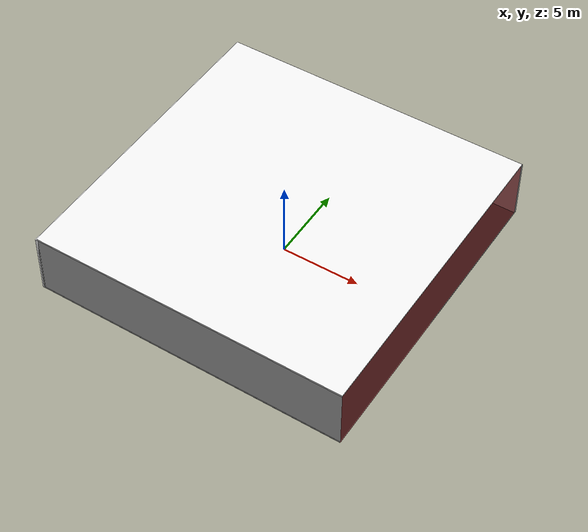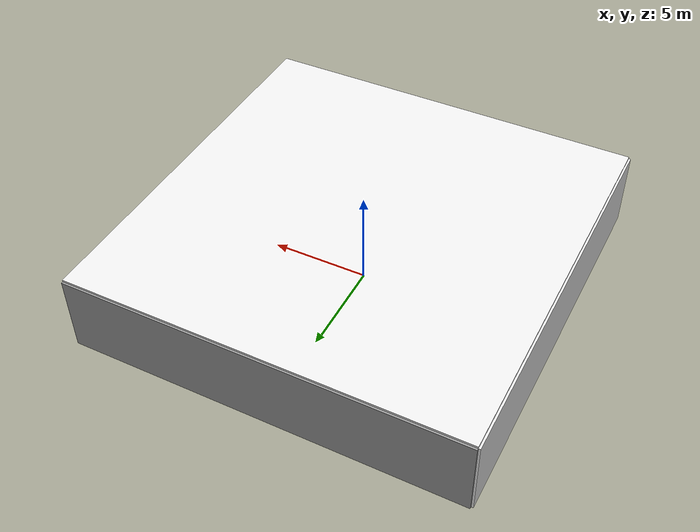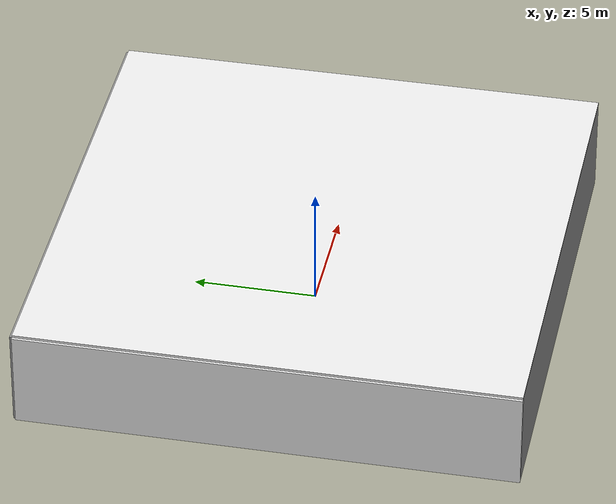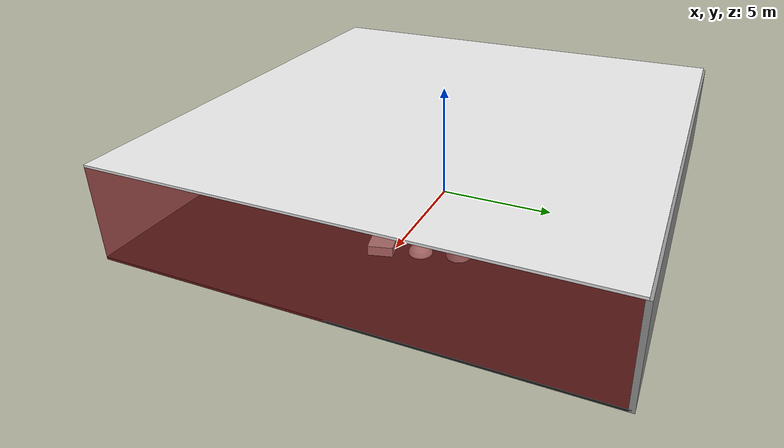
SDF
<sdf version="1.4">
 <world name="default">
  <physics type="ode">
   <max_step_size>0.001</max_step_size>
   <real_time_factor>1</real_time_factor>
   <real_time_update_rate>1000</real_time_update_rate>
   <gravity>0 0 -9.8</gravity>
  </physics>
  <scene><ambient>0.4 0.4 0.4 1</ambient><background>0.7 0.7 0.7 1</background><shadows>1</shadows></scene>
  <model name="Surrounding">
   <static>1</static>
   <link name="Ceiling">
    <collision name="Ceiling_Collision"><geometry><box><size>20 20 0.1</size></box></geometry></collision>
    <visual name="Ceiling_Visual">
     <geometry><box><size>20 20 0.1</size></box></geometry>
     <material>
      <script><uri>file://media/materials/scripts/gazebo.material</uri><name>Gazebo/White</name></script>
     </material>
    </visual>
    <pose>0 0 4.05 0 0 0</pose>
   </link>
   <link name="Wall_South">
    <collision name="Wall_South_Collision">
     <geometry><box><size>20 0 4</size></box></geometry>
     <pose>0 0 2 0 -0 0</pose>
    </collision>
    <visual name="Wall_South_Visual">
     <pose>0 0 2 0 -0 0</pose>
     <geometry><box><size>20 0 4</size></box></geometry>
     <material>
      <script><uri>file://media/materials/scripts/gazebo.material</uri><name>Gazebo/GreyGradientSky</name></script>
     </material>
    </visual>
    <velocity_decay><linear>0</linear><angular>0</angular></velocity_decay>
    <pose>0 -10 0 0 -0 0</pose>
   </link>
   <link name="Wall_East">
    <collision name="Wall_21_Collision">
     <geometry><box><size>20 0 4</size></box></geometry>
     <pose>0 0 2 0 -0 0</pose>
    </collision>
    <visual name="Wall_21_Visual">
     <pose>0 0 2 0 -0 0</pose>
     <geometry><box><size>20 0 4</size></box></geometry>
     <material>
      <script><uri>file://media/materials/scripts/gazebo.material</uri><name>Gazebo/RedTransparent</name></script>
     </material>
    </visual>
    <velocity_decay><linear>0</linear><angular>0</angular></velocity_decay>
    <pose>10 0 0 0 -0 1.5708</pose>
   </link>
   <link name="Wall_North">
    <collision name="Wall_22_Collision">
     <geometry><box><size>20 0.2 4</size></box></geometry>
     <pose>0 0 2 0 -0 0</pose>
    </collision>
    <visual name="Wall_22_Visual">
     <pose>0 0 2 0 -0 0</pose>
     <geometry><box><size>20 0.2 4</size></box></geometry>
     <material>
      <script><uri>file://media/materials/scripts/gazebo.material</uri><name>Gazebo/GreyGradientSky</name></script>
     </material>
    </visual>
    <velocity_decay><linear>0</linear><angular>0</angular></velocity_decay>
    <pose>0 10 0 0 -0 0</pose>
   </link>
   <link name="Wall_West">
    <collision name="Wall_23_Collision">
     <geometry><box><size>20 0.2 4</size></box></geometry>
     <pose>0 0 2 0 -0 0</pose>
    </collision>
    <visual name="Wall_23_Visual">
     <pose>0 0 2 0 -0 0</pose>
     <geometry><box><size>20 0.2 4</size></box></geometry>
     <material>
      <script><uri>file://media/materials/scripts/gazebo.material</uri><name>Gazebo/WhiteGlow</name></script>
     </material>
    </visual>
    <velocity_decay><linear>0</linear><angular>0</angular></velocity_decay>
    <pose>-10 0 0 0 0 -1.5708</pose>
   </link>
   <link name="Ground_link">
    <collision name="collision">
     <pose>0 0 .05 0 -0 0</pose>
     <geometry><box><size>20 20 0.1</size></box></geometry>
    </collision>
    <visual name="visual">
     <pose>0 0 .05 0 -0 0</pose>
     <geometry><box><size>20 20 0.1</size></box></geometry>
     <material>
      <script><uri>file://media/materials/scripts/gazebo.material</uri><name>Gazebo/FlatBlack</name></script>
     </material>
    </visual>
   </link>
   <static>1</static>
  </model>
  <spherical_coordinates>
   <surface_model>EARTH_WGS84</surface_model>
   <latitude_deg>0</latitude_deg>
   <longitude_deg>0</longitude_deg>
   <elevation>0</elevation>
   <heading_deg>0</heading_deg>
  </spherical_coordinates>
  <light name="lightball_0" type="diffuse">
   <diffuse>0.8 0.8 0.8 1</diffuse>
   <specular>0.2 0.2 0.2 1</specular>
   <attenuation>
    <range>100</range>
    <constant>0.7</constant>
    <linear>0.01</linear>
    <quadratic>0.001</quadratic>
   </attenuation>
   <direction>-0.5 0.1 -0.9</direction>
   <pose>3.68537120014 9.17515859794 3.10138647382 0 0 0</pose>
  </light>
  <light name="lightball_1" type="diffuse">
   <diffuse>0.8 0.8 0.8 1</diffuse>
   <specular>0.2 0.2 0.2 1</specular>
   <attenuation>
    <range>100</range>
    <constant>0.7</constant>
    <linear>0.01</linear>
    <quadratic>0.001</quadratic>
   </attenuation>
   <direction>-0.5 0.1 -0.9</direction>
   <pose>1.76297339215 -0.0648610781918 1.90020915038 0 0 0</pose>
  </light>
  <light name="lightball_2" type="diffuse">
   <diffuse>0.8 0.8 0.8 1</diffuse>
   <specular>0.2 0.2 0.2 1</specular>
   <attenuation>
    <range>100</range>
    <constant>0.7</constant>
    <linear>0.01</linear>
    <quadratic>0.001</quadratic>
   </attenuation>
   <direction>-0.5 0.1 -0.9</direction>
   <pose>0.818974234471 9.8140976386 1.69610142519 0 0 0</pose>
  </light>
  <light name="lightball_3" type="diffuse">
   <diffuse>0.8 0.8 0.8 1</diffuse>
   <specular>0.2 0.2 0.2 1</specular>
   <attenuation>
    <range>100</range>
    <constant>0.7</constant>
    <linear>0.01</linear>
    <quadratic>0.001</quadratic>
   </attenuation>
   <direction>-0.5 0.1 -0.9</direction>
   <pose>4.61208072334 -6.03127068545 2.97742820005 0 0 0</pose>
  </light>
  <light name="lightball_4" type="diffuse">
   <diffuse>0.8 0.8 0.8 1</diffuse>
   <specular>0.2 0.2 0.2 1</specular>
   <attenuation>
    <range>100</range>
    <constant>0.7</constant>
    <linear>0.01</linear>
    <quadratic>0.001</quadratic>
   </attenuation>
   <direction>-0.5 0.1 -0.9</direction>
   <pose>2.32308668044 -7.26600188584 3.62821308087 0 0 0</pose>
  </light>
  <light name="lightball_5" type="diffuse">
   <diffuse>0.8 0.8 0.8 1</diffuse>
   <specular>0.2 0.2 0.2 1</specular>
   <attenuation>
    <range>100</range>
    <constant>0.7</constant>
    <linear>0.01</linear>
    <quadratic>0.001</quadratic>
   </attenuation>
   <direction>-0.5 0.1 -0.9</direction>
   <pose>-7.57529367944 -4.31978380288 2.90341727151 0 0 0</pose>
  </light>
  <light name="lightball_6" type="diffuse">
   <diffuse>0.8 0.8 0.8 1</diffuse>
   <specular>0.2 0.2 0.2 1</specular>
   <attenuation>
    <range>100</range>
    <constant>0.7</constant>
    <linear>0.01</linear>
    <quadratic>0.001</quadratic>
   </attenuation>
   <direction>-0.5 0.1 -0.9</direction>
   <pose>-2.07461409618 6.45046312066 3.3363228925 0 0 0</pose>
  </light>
  <light name="lightball_7" type="diffuse">
   <diffuse>0.8 0.8 0.8 1</diffuse>
   <specular>0.2 0.2 0.2 1</specular>
   <attenuation>
    <range>100</range>
    <constant>0.7</constant>
    <linear>0.01</linear>
    <quadratic>0.001</quadratic>
   </attenuation>
   <direction>-0.5 0.1 -0.9</direction>
   <pose>-3.88162375459 0.973410971889 3.38872744047 0 0 0</pose>
  </light>
  <light name="lightball_8" type="diffuse">
   <diffuse>0.8 0.8 0.8 1</diffuse>
   <specular>0.2 0.2 0.2 1</specular>
   <attenuation>
    <range>100</range>
    <constant>0.7</constant>
    <linear>0.01</linear>
    <quadratic>0.001</quadratic>
   </attenuation>
   <direction>-0.5 0.1 -0.9</direction>
   <pose>-7.18682032011 -2.92585713686 3.83760197017 0 0 0</pose>
  </light>
  <light name="lightball_9" type="diffuse">
   <diffuse>0.8 0.8 0.8 1</diffuse>
   <specular>0.2 0.2 0.2 1</specular>
   <attenuation>
    <range>100</range>
    <constant>0.7</constant>
    <linear>0.01</linear>
    <quadratic>0.001</quadratic>
   </attenuation>
   <direction>-0.5 0.1 -0.9</direction>
   <pose>9.30735602961 -1.94034751747 2.06239793865 0 0 0</pose>
  </light>
  <light name="lightball_10" type="diffuse">
   <diffuse>0.8 0.8 0.8 1</diffuse>
   <specular>0.2 0.2 0.2 1</specular>
   <attenuation>
    <range>100</range>
    <constant>0.7</constant>
    <linear>0.01</linear>
    <quadratic>0.001</quadratic>
   </attenuation>
   <direction>-0.5 0.1 -0.9</direction>
   <pose>8.51026179788 -4.27719815733 2.41494735229 0 0 0</pose>
  </light>
  <include><uri>model://cabinet</uri><pose>-7.23929650095 1.46804919313 0 0 0 1.55257752393</pose></include>
  <include><uri>model://cabinet</uri><pose>-1.85378935956 2.04853669767 0 0 0 2.94585523356</pose></include>
  <include>
   <uri>model://robocup_3Dsim_goal</uri>
   <pose>1.65879857623 0.985600406419 0 0 0 1.56600382583</pose>
  </include>
  <include><uri>model://cabinet</uri><pose>4.16163950997 -7.26492539569 0 0 0 2.62204719088</pose></include>
  <include>
   <uri>model://textured_shapes</uri>
   <pose>5.03077909824 1.09689128301 0 0 0 0.241068835523</pose>
  </include>
 </world>
</sdf>

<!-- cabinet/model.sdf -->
<sdf version="1.5">
  <model name="cabinet">
    <static>true</static>
    <link name="cabinet_bottom_plate">
      <inertial>
        <pose>0 0 -1 0 0 0</pose>
        <inertia>
          <ixx>2.050000</ixx>
          <ixy>0</ixy>
          <ixz>0</ixz>
          <iyy>2.050000</iyy>
          <iyz>0</iyz>
          <izz>2.050000</izz>
        </inertia>
        <mass>25.000000</mass>
      </inertial>
      <collision name="cabinet_bottom_plate_geom">
        <pose>0 0 0.010000 0 0 0</pose>
        <geometry>
          <box>
            <size>0.450000 0.450000 0.020000</size>
          </box>
        </geometry>
      </collision>
      <visual name="cabinet_bottom_plate_geom_visual">
        <pose>0 0 0.010000 0 0 0</pose>
        <geometry>
          <box>
            <size>0.450000 0.450000 0.020000</size>
          </box>
        </geometry>
        <material>
          <script>
            <uri>model://media/materials/scripts/gazebo.material</uri>
            <name>Gazebo/Wood</name>
          </script>
        </material>
      </visual>
      <collision name="cabinet_bottom_plate_geom_cabinet_back_plate">
        <pose>0.235000 0 0.510000 0 0 0</pose>
        <geometry>
          <box>
            <size>0.020000 0.450000 1.020000</size>
          </box>
        </geometry>
      </collision>
      <visual name="cabinet_bottom_plate_geom_cabinet_back_plate_visual">
        <pose>0.235000 0 0.510000 0 0 0</pose>
        <geometry>
          <box>
            <size>0.020000 0.450000 1.020000</size>
          </box>
        </geometry>
        <material>
          <script>
            <uri>model://media/materials/scripts/gazebo.material</uri>
            <name>Gazebo/Wood</name>
          </script>
        </material>
      </visual>
      <collision name="cabinet_bottom_plate_geom_cabinet_left_plate">
        <pose>0 0.235000 0.510000 0 0 0</pose>
        <geometry>
          <box>
            <size>0.450000 0.020000 1.020000</size>
          </box>
        </geometry>
      </collision>
      <visual name="cabinet_bottom_plate_geom_cabinet_left_plate_visual">
        <pose>0 0.235000 0.510000 0 0 0</pose>
        <geometry>
          <box>
            <size>0.450000 0.020000 1.020000</size>
          </box>
        </geometry>
        <material>
          <script>
            <uri>model://media/materials/scripts/gazebo.material</uri>
            <name>Gazebo/Wood</name>
          </script>
        </material>
      </visual>
      <collision name="cabinet_bottom_plate_geom_cabinet_middle_plate">
        <pose>0 0 0.510000 0 0 0</pose>
        <geometry>
          <box>
            <size>0.450000 0.450000 0.020000</size>
          </box>
        </geometry>
      </collision>
      <visual name="cabinet_bottom_plate_geom_cabinet_middle_plate_visual">
        <pose>0 0 0.510000 0 0 0</pose>
        <geometry>
          <box>
            <size>0.450000 0.450000 0.020000</size>
          </box>
        </geometry>
        <material>
          <script>
            <uri>model://media/materials/scripts/gazebo.material</uri>
            <name>Gazebo/Wood</name>
          </script>
        </material>
      </visual>
      <collision name="cabinet_bottom_plate_geom_cabinet_right_plate">
        <pose>0 -0.235000 0.510000 0 0 0</pose>
        <geometry>
          <box>
            <size>0.450000 0.020000 1.020000</size>
          </box>
        </geometry>
      </collision>
      <visual name="cabinet_bottom_plate_geom_cabinet_right_plate_visual">
        <pose>0 -0.235000 0.510000 0 0 0</pose>
        <geometry>
          <box>
            <size>0.450000 0.020000 1.020000</size>
          </box>
        </geometry>
        <material>
          <script>
            <uri>model://media/materials/scripts/gazebo.material</uri>
            <name>Gazebo/Wood</name>
          </script>
        </material>
      </visual>
      <collision name="cabinet_bottom_plate_geom_cabinet_top_plate">
        <pose>0 0 1.010000 0 0 0</pose>
        <geometry>
          <box>
            <size>0.450000 0.450000 0.020000</size>
          </box>
        </geometry>
      </collision>
      <visual name="cabinet_bottom_plate_geom_cabinet_top_plate_visual">
        <pose>0 0 1.010000 0 0 0</pose>
        <geometry>
          <box>
            <size>0.450000 0.450000 0.020000</size>
          </box>
        </geometry>
        <material>
          <script>
            <uri>model://media/materials/scripts/gazebo.material</uri>
            <name>Gazebo/Wood</name>
          </script>
        </material>
      </visual>
    </link>
  </model>
</sdf>

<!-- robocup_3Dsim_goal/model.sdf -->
<sdf version="1.5">
  <model name="robocup_3d_goal">
    <static>true</static>
    <link name="left_post">
      <pose>0 1.05 0.45 0 0 0</pose>
      <collision name="collision">
        <geometry>
          <cylinder>
            <radius>0.05</radius>
            <length>0.9</length>
          </cylinder>
        </geometry>
      </collision>
      <visual name="visual">
        <geometry>
          <cylinder>
            <radius>0.05</radius>
            <length>0.9</length>
          </cylinder>
        </geometry>
        <material>
          <script>
            <uri>file://media/materials/scripts/gazebo.material</uri>
            <name>Gazebo/ZincYellow</name>
          </script>
        </material>
      </visual>
    </link>
    <link name="left_support_horiz_lower">
      <pose>0.30 1.05 0.01 0 0 0</pose>
      <collision name="collision">
        <geometry>
          <box>
            <size>0.50 0.02 0.02</size>
          </box>
        </geometry>
      </collision>
      <visual name="visual">
        <geometry>
          <box>
            <size>0.50 0.02 0.02</size>
          </box>
        </geometry>
        <material>
          <script>
            <uri>file://media/materials/scripts/gazebo.material</uri>
            <name>Gazebo/White</name>
          </script>
        </material>
      </visual>
    </link>
    <link name="left_support_horiz_upper">
      <pose>0.30 1.05 0.79 0 0 0</pose>
      <collision name="collision">
        <geometry>
          <box>
            <size>0.50 0.02 0.02</size>
          </box>
        </geometry>
      </collision>
      <visual name="visual">
        <geometry>
          <box>
            <size>0.50 0.02 0.02</size>
          </box>
        </geometry>
        <material>
          <script>
            <uri>file://media/materials/scripts/gazebo.material</uri>
            <name>Gazebo/White</name>
          </script>
        </material>
      </visual>
    </link>
    <link name="left_support_vertical">
      <pose>0.56 1.05 0.4 0 1.5708 0</pose>
      <collision name="collision">
        <geometry>
          <box>
            <size>0.80 0.02 0.02</size>
          </box>
        </geometry>
      </collision>
      <visual name="visual">
        <geometry>
          <box>
            <size>0.80 0.02 0.02</size>
          </box>
        </geometry>
        <material>
          <script>
            <uri>file://media/materials/scripts/gazebo.material</uri>
            <name>Gazebo/White</name>
          </script>
        </material>
      </visual>
    </link>
    <link name="right_support_horiz_lower">
      <pose>0.30 -1.05 0.01 0 0 0</pose>
      <collision name="collision">
        <geometry>
          <box>
            <size>0.50 0.02 0.02</size>
          </box>
        </geometry>
      </collision>
      <visual name="visual">
        <geometry>
          <box>
            <size>0.50 0.02 0.02</size>
          </box>
        </geometry>
        <material>
          <script>
            <uri>file://media/materials/scripts/gazebo.material</uri>
            <name>Gazebo/White</name>
          </script>
        </material>
      </visual>
    </link>
    <link name="right_support_horiz_upper">
      <pose>0.30 -1.05 0.79 0 0 0</pose>
      <collision name="collision">
        <geometry>
          <box>
            <size>0.50 0.02 0.02</size>
          </box>
        </geometry>
      </collision>
      <visual name="visual">
        <geometry>
          <box>
            <size>0.50 0.02 0.02</size>
          </box>
        </geometry>
        <material>
          <script>
            <uri>file://media/materials/scripts/gazebo.material</uri>
            <name>Gazebo/White</name>
          </script>
        </material>
      </visual>
    </link>
    <link name="right_support_vertical">
      <pose>0.56 -1.05 0.4 0 1.5708 0</pose>
      <collision name="collision">
        <geometry>
          <box>
            <size>0.80 0.02 0.02</size>
          </box>
        </geometry>
      </collision>
      <visual name="visual">
        <geometry>
          <box>
            <size>0.80 0.02 0.02</size>
          </box>
        </geometry>
        <material>
          <script>
            <uri>file://media/materials/scripts/gazebo.material</uri>
            <name>Gazebo/White</name>
          </script>
        </material>
      </visual>
    </link>
    <link name="center_support_horiz_lower">
      <pose>0.56 0 0.01 0 1.5708 0</pose>
      <collision name="collision">
        <geometry>
          <box>
            <size>0.02 2.08 0.02</size>
          </box>
        </geometry>
      </collision>
      <visual name="visual">
        <geometry>
          <box>
            <size>0.02 2.08 0.02</size>
          </box>
        </geometry>
        <material>
          <script>
            <uri>file://media/materials/scripts/gazebo.material</uri>
            <name>Gazebo/White</name>
          </script>
        </material>
      </visual>
    </link>
    <link name="center_support_horiz_upper">
      <pose>0.56 0 0.79 0 1.5708 0</pose>
      <collision name="collision">
        <geometry>
          <box>
            <size>0.02 2.08 0.02</size>
          </box>
        </geometry>
      </collision>
      <visual name="visual">
        <geometry>
          <box>
            <size>0.02 2.08 0.02</size>
          </box>
        </geometry>
        <material>
          <script>
            <uri>file://media/materials/scripts/gazebo.material</uri>
            <name>Gazebo/White</name>
          </script>
        </material>
      </visual>
    </link>
    <link name="right_post">
      <pose>0 -1.05 0.45 0 0 0</pose>
      <collision name="collision">
        <geometry>
          <cylinder>
            <radius>0.05</radius>
            <length>0.9</length>
          </cylinder>
        </geometry>
      </collision>
      <visual name="visual">
        <geometry>
          <cylinder>
            <radius>0.05</radius>
            <length>0.9</length>
          </cylinder>
        </geometry>
        <material>
          <script>
            <uri>file://media/materials/scripts/gazebo.material</uri>
            <name>Gazebo/ZincYellow</name>
          </script>
        </material>
      </visual>
    </link>
    <link name="crossbar">
      <pose>0 0 0.85 1.57 1.57 0</pose>
      <collision name="collision">
        <geometry>
          <cylinder>
            <radius>0.05</radius>
            <length>2.0</length>
          </cylinder>
        </geometry>
      </collision>
      <visual name="visual">
        <geometry>
          <cylinder>
            <radius>0.05</radius>
            <length>2.0</length>
          </cylinder>
        </geometry>
        <material>
          <script>
            <uri>file://media/materials/scripts/gazebo.material</uri>
            <name>Gazebo/ZincYellow</name>
          </script>
        </material>
      </visual>
    </link>
    <link name="center_net">
      <pose>0.56 0 0.40 0 0 0</pose>
      <collision name="collision">
        <geometry>
          <box>
            <size>0.01 2.1 0.80</size>
          </box>
        </geometry>
      </collision>
      <visual name="visual">
        <geometry>
          <box>
            <size>0.01 2.1 0.80</size>
          </box>
        </geometry>
        <material>
          <script>
            <uri>model://../model_source/models/robocup09_spl_field/materials/scripts/</uri>
            <uri>model://../model_source/models/robocup09_spl_field/materials/textures/</uri>
            <name>RoboCup/Net</name>
          </script>
        </material>
      </visual>
    </link>
    <link name="left_net">
      <pose>0.30 1.05 0.40 0 0 0</pose>
      <collision name="collision">
        <geometry>
          <box>
            <size>0.50 0.01 0.76</size>
          </box>
        </geometry>
      </collision>
      <visual name="visual">
        <geometry>
          <box>
            <size>0.50 0.01 0.76</size>
          </box>
        </geometry>
        <material>
          <script>
            <uri>model://../model_source/models/robocup09_spl_field/materials/scripts/</uri>
            <uri>model://../model_source/models/robocup09_spl_field/materials/textures/</uri>
            <name>RoboCup/Net</name>
          </script>
        </material>
      </visual>
    </link>
    <link name="right_net">
      <pose>0.30 -1.05 0.40 0 0 0</pose>
      <collision name="collision">
        <geometry>
          <box>
            <size>0.50 0.01 0.76</size>
          </box>
        </geometry>
      </collision>
      <visual name="visual">
        <geometry>
          <box>
            <size>0.50 0.01 0.76</size>
          </box>
        </geometry>
        <material>
          <script>
            <uri>model://../model_source/models/robocup09_spl_field/materials/scripts/</uri>
            <uri>model://../model_source/models/robocup09_spl_field/materials/textures/</uri>
            <name>RoboCup/Net</name>
          </script>
        </material>
      </visual>
    </link>
  </model>
</sdf>

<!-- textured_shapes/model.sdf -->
<sdf version="1.6">
  <model name="textured_shapes">
    <pose>0 0 0.5 0 0 0</pose>
    <link name="box">
      <pose>0 -1.5 0 0 0 0</pose>
      <collision name="collision">
        <geometry>
          <box>
            <size>1 1 1</size>
          </box>
        </geometry>
      </collision>
      <visual name="visual">
        <geometry>
          <box>
            <size>1 1 1</size>
          </box>
        </geometry>
        <material>
          <script>
            <uri>model://../model_source/models/textured_shapes/materials/scripts</uri>
            <uri>model://../model_source/models/textured_shapes/materials/textures</uri>
            <name>TexturedShape/Squares</name>
          </script>
        </material>
      </visual>
    </link>
    <link name="sphere">
      <collision name="collision">
        <geometry>
          <sphere>
            <radius>0.5</radius>
          </sphere>
        </geometry>
      </collision>
      <visual name="visual">
        <geometry>
          <sphere>
            <radius>0.5</radius>
          </sphere>
        </geometry>
        <material>
          <script>
            <uri>model://../model_source/models/textured_shapes/materials/scripts</uri>
            <uri>model://../model_source/models/textured_shapes/materials/textures</uri>
            <name>TexturedShape/Squares</name>
          </script>
        </material>
      </visual>
    </link>
    <link name="cylinder">
      <pose>0 1.5 0 0 0 0</pose>
      <collision name="collision">
        <geometry>
          <cylinder>
            <radius>0.5</radius>
            <length>1</length>
          </cylinder>
        </geometry>
      </collision>
      <visual name="visual">
        <geometry>
          <cylinder>
            <radius>0.5</radius>
            <length>1</length>
          </cylinder>
        </geometry>
        <material>
          <script>
            <uri>model://../model_source/models/textured_shapes/materials/scripts</uri>
            <uri>model://../model_source/models/textured_shapes/materials/textures</uri>
            <name>TexturedShape/Squares</name>
          </script>
        </material>
      </visual>
    </link>
  </model>
</sdf>
